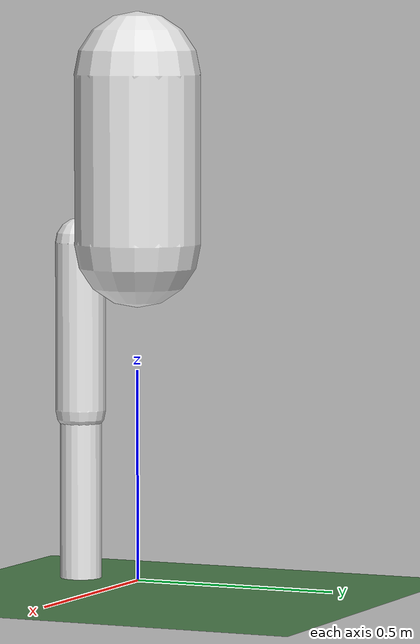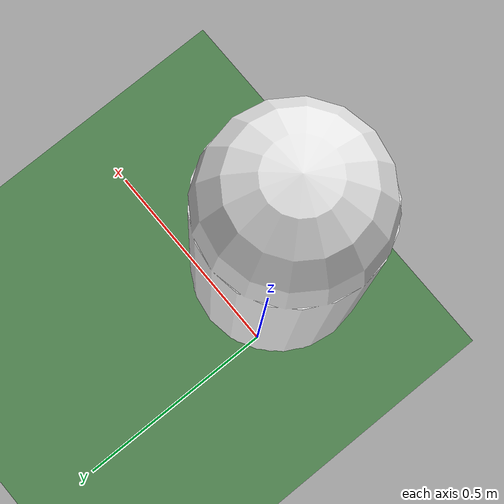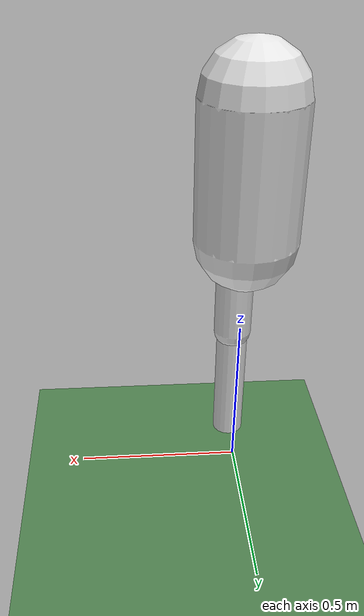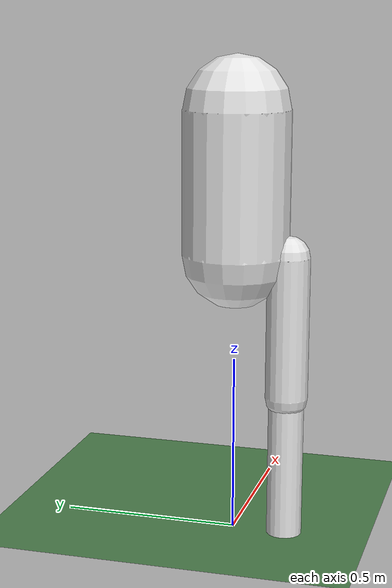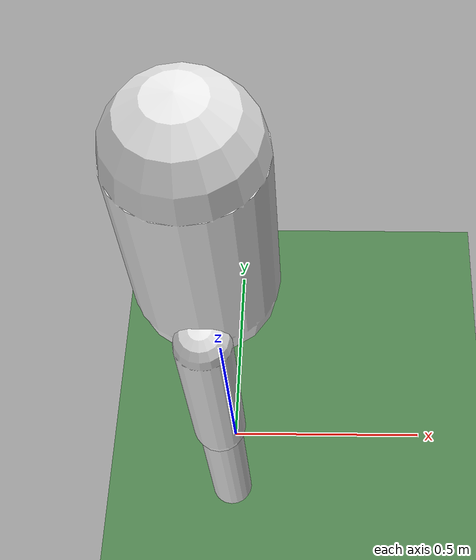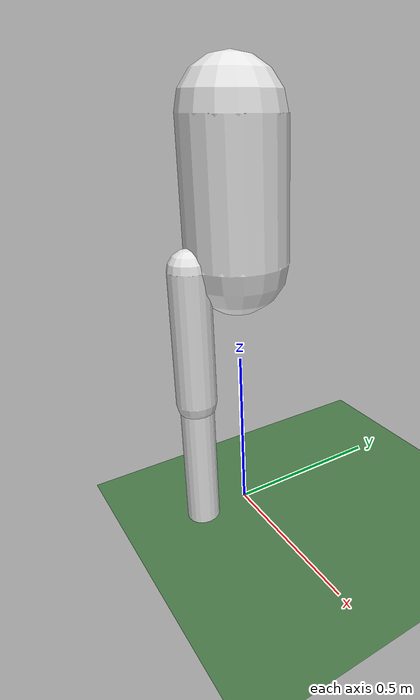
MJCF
<mujoco model="judo_athlete">
    <compiler angle="degree" coordinate="local" inertiafromgeom="true"/>

    <option timestep="0.0166" gravity="0 0 -9.81"/> <asset>
        <material name="mat_gi" rgba="0.9 0.9 0.9 1"/> <material name="mat_belt" rgba="0.1 0.1 0.1 1"/> </asset>

    <worldbody>
        <light pos="0 0 5" dir="0 0 -1"/>
        <geom type="plane" size="5 5 0.1" rgba="0.3 0.5 0.3 1"/> <body name="torso" pos="0 0 1.0">
            <freejoint name="root"/>

            <geom name="torso_geom" type="capsule" fromto="0 0 0.2  0 0 -0.2" size="0.15" material="mat_gi"/>

            <body name="right_thigh" pos="0 -0.15 -0.2">
                <joint name="right_hip" type="ball" stiffness="100" damping="10"/>

                <geom name="r_thigh_geom" type="capsule" fromto="0 0 0  0 0 -0.4" size="0.06" material="mat_gi"/>

                <body name="right_shin" pos="0 0 -0.4">
                    <joint name="right_knee" type="hinge" axis="1 0 0" range="-150 0" stiffness="100" damping="10"/>

                    <geom name="r_shin_geom" type="capsule" fromto="0 0 0  0 0 -0.4" size="0.05" material="mat_gi"/>
                </body>
            </body>
        </body>
    </worldbody>

    <actuator>
        <position name="motor_right_knee" joint="right_knee" kp="500"/>
    </actuator>

</mujoco>
